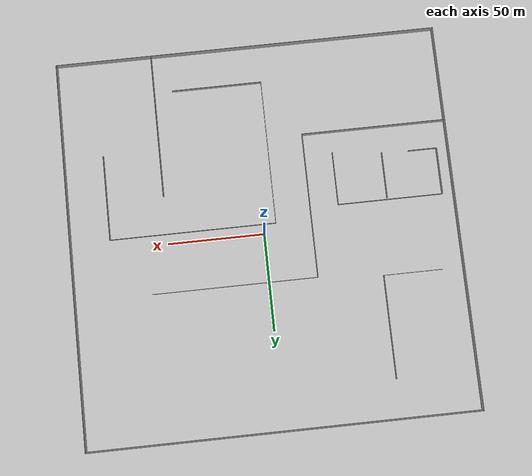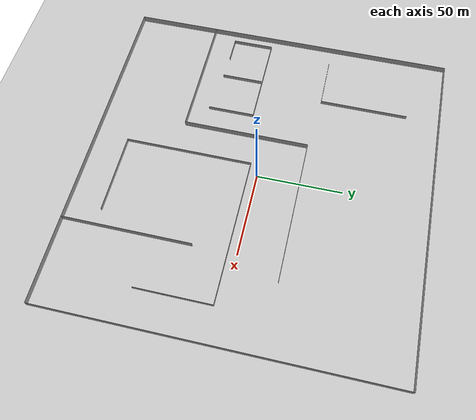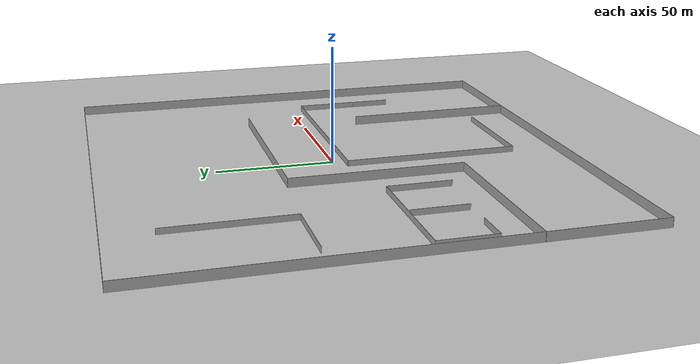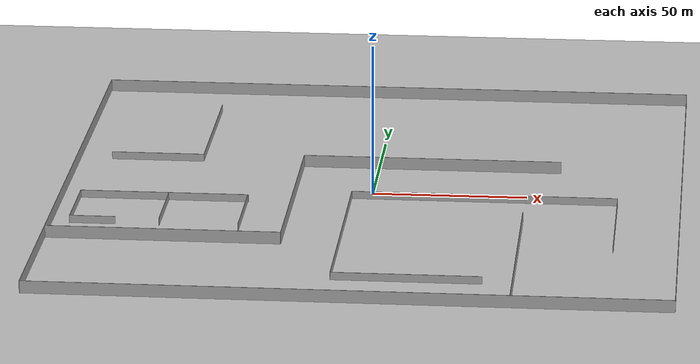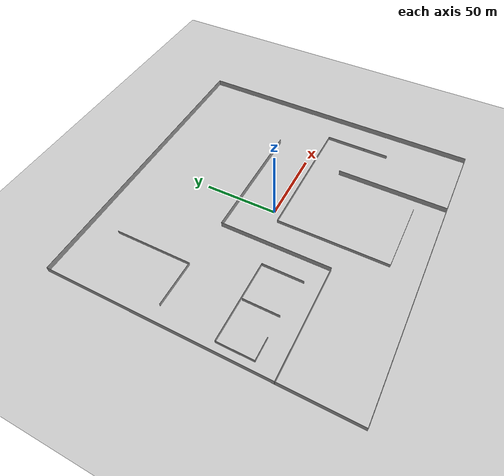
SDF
<sdf version="1.7">
 <world name="default">
  <light name="sun" type="directional">
   <pose>0 0 10 0 -0 0</pose>
   <diffuse>0.8 0.8 0.8 1</diffuse>
   <specular>0.2 0.2 0.2 1</specular>
   <attenuation>
    <range>1000</range>
    <constant>0.9</constant>
    <linear>0.01</linear>
    <quadratic>0.001</quadratic>
   </attenuation>
   <direction>-0.5 0.1 -0.9</direction>
   <spot><inner_angle>0</inner_angle><outer_angle>0</outer_angle><falloff>0</falloff></spot>
  </light>
  <model name="ground_plane">
   <static>1</static>
   <link name="link">
    <collision name="collision">
     <geometry><plane><normal>0 0 1</normal><size>100 100</size></plane></geometry>
     <surface><friction><ode><mu>100</mu><mu2>50</mu2></ode></friction></surface>
    </collision>
    <visual name="visual">
     <cast_shadows>0</cast_shadows>
     <geometry><plane><normal>0 0 1</normal><size>100 100</size></plane></geometry>
     <material>
      <script><uri>file://media/materials/scripts/gazebo.material</uri><name>Gazebo/Grey</name></script>
     </material>
    </visual>
   </link>
  </model>
  <gravity>0 0 -9.8</gravity>
  <magnetic_field>6e-06 2.3e-05 -4.2e-05</magnetic_field>
  <atmosphere type="adiabatic"/>
  <physics type="ode">
   <max_step_size>0.001</max_step_size>
   <real_time_factor>1</real_time_factor>
   <real_time_update_rate>1000</real_time_update_rate>
  </physics>
  <scene><ambient>0.4 0.4 0.4 1</ambient><background>0.7 0.7 0.7 1</background><shadows>1</shadows></scene>
  <spherical_coordinates>
   <surface_model>EARTH_WGS84</surface_model>
   <latitude_deg>0</latitude_deg>
   <longitude_deg>0</longitude_deg>
   <elevation>0</elevation>
   <heading_deg>0</heading_deg>
  </spherical_coordinates>
  <model name="wall.config">
   <link name="Wall_14">
    <collision name="Wall_14_Collision">
     <geometry><box><size>200.15 0.15 4</size></box></geometry>
     <pose>0 0 2 0 -0 0</pose>
    </collision>
    <visual name="Wall_14_Visual">
     <pose>0 0 2 0 -0 0</pose>
     <geometry><box><size>200.15 0.15 4</size></box></geometry>
     <material>
      <script><uri>file://media/materials/scripts/gazebo.material</uri><name>Gazebo/Grey</name></script>
      <ambient>1 1 1 1</ambient>
     </material>
     <meta><layer>0</layer></meta>
    </visual>
    <pose>0 100 0 0 -0 0</pose>
   </link>
   <link name="Wall_16">
    <collision name="Wall_16_Collision">
     <geometry><box><size>200.15 0.15 4</size></box></geometry>
     <pose>0 0 2 0 -0 0</pose>
    </collision>
    <visual name="Wall_16_Visual">
     <pose>0 0 2 0 -0 0</pose>
     <geometry><box><size>200.15 0.15 4</size></box></geometry>
     <material>
      <script><uri>file://media/materials/scripts/gazebo.material</uri><name>Gazebo/Grey</name></script>
      <ambient>1 1 1 1</ambient>
     </material>
     <meta><layer>0</layer></meta>
    </visual>
    <pose>100 0 0 0 -0 -1.5708</pose>
   </link>
   <link name="Wall_18">
    <collision name="Wall_18_Collision">
     <geometry><box><size>200.15 0.15 4</size></box></geometry>
     <pose>0 0 2 0 -0 0</pose>
    </collision>
    <visual name="Wall_18_Visual">
     <pose>0 0 2 0 -0 0</pose>
     <geometry><box><size>200.15 0.15 4</size></box></geometry>
     <material>
      <script><uri>file://media/materials/scripts/gazebo.material</uri><name>Gazebo/Grey</name></script>
      <ambient>1 1 1 1</ambient>
     </material>
     <meta><layer>0</layer></meta>
    </visual>
    <pose>0 -100 0 0 -0 3.14159</pose>
   </link>
   <link name="Wall_20">
    <collision name="Wall_20_Collision">
     <geometry><box><size>200.15 0.15 4</size></box></geometry>
     <pose>0 0 2 0 -0 0</pose>
    </collision>
    <visual name="Wall_20_Visual">
     <pose>0 0 2 0 -0 0</pose>
     <geometry><box><size>200.15 0.15 4</size></box></geometry>
     <material>
      <script><uri>file://media/materials/scripts/gazebo.material</uri><name>Gazebo/Grey</name></script>
      <ambient>1 1 1 1</ambient>
     </material>
     <meta><layer>0</layer></meta>
    </visual>
    <pose>-100 0 0 0 -0 1.5708</pose>
   </link>
   <link name="Wall_22">
    <collision name="Wall_22_Collision">
     <geometry><box><size>75.15 0.15 4</size></box></geometry>
     <pose>0 0 2 0 -0 0</pose>
    </collision>
    <visual name="Wall_22_Visual">
     <pose>0 0 2 0 -0 0</pose>
     <geometry><box><size>75.15 0.15 4</size></box></geometry>
     <material>
      <script><uri>file://media/materials/scripts/gazebo.material</uri><name>Gazebo/Grey</name></script>
      <ambient>1 1 1 1</ambient>
     </material>
     <meta><layer>0</layer></meta>
    </visual>
    <pose>50 -62.5 0 0 -0 1.5708</pose>
   </link>
   <link name="Wall_24">
    <collision name="Wall_24_Collision">
     <geometry><box><size>75.15 0.15 4</size></box></geometry>
     <pose>0 0 2 0 -0 0</pose>
    </collision>
    <visual name="Wall_24_Visual">
     <pose>0 0 2 0 -0 0</pose>
     <geometry><box><size>75.15 0.15 4</size></box></geometry>
     <material>
      <script><uri>file://media/materials/scripts/gazebo.material</uri><name>Gazebo/Grey</name></script>
      <ambient>1 1 1 1</ambient>
     </material>
     <meta><layer>0</layer></meta>
    </visual>
    <pose>-62.5 -50 0 0 -0 0</pose>
   </link>
   <link name="Wall_26">
    <collision name="Wall_26_Collision">
     <geometry><box><size>75.15 0.15 4</size></box></geometry>
     <pose>0 0 2 0 -0 0</pose>
    </collision>
    <visual name="Wall_26_Visual">
     <pose>0 0 2 0 -0 0</pose>
     <geometry><box><size>75.15 0.15 4</size></box></geometry>
     <material>
      <script><uri>file://media/materials/scripts/gazebo.material</uri><name>Gazebo/Grey</name></script>
      <ambient>1 1 1 1</ambient>
     </material>
     <meta><layer>0</layer></meta>
    </visual>
    <pose>-25 -12.5 0 0 -0 1.5708</pose>
   </link>
   <link name="Wall_28">
    <collision name="Wall_28_Collision">
     <geometry><box><size>85.15 0.15 4</size></box></geometry>
     <pose>0 0 2 0 -0 0</pose>
    </collision>
    <visual name="Wall_28_Visual">
     <pose>0 0 2 0 -0 0</pose>
     <geometry><box><size>85.15 0.15 4</size></box></geometry>
     <material>
      <script><uri>file://media/materials/scripts/gazebo.material</uri><name>Gazebo/Grey</name></script>
      <ambient>1 1 1 1</ambient>
     </material>
     <meta><layer>0</layer></meta>
    </visual>
    <pose>17.5 25 0 0 -0 0</pose>
   </link>
   <static>1</static>
  </model>
  <model name="wall2.config">
   <pose>-7.32318 -0.17284 0 0 -0 0</pose>
   <link name="Wall_10">
    <collision name="Wall_10_Collision">
     <geometry><box><size>54.5363 0.15 2.5</size></box></geometry>
     <pose>0 0 1.25 0 -0 0</pose>
    </collision>
    <visual name="Wall_10_Visual">
     <pose>0 0 1.25 0 -0 0</pose>
     <geometry><box><size>54.5363 0.15 2.5</size></box></geometry>
     <material>
      <script><uri>file://media/materials/scripts/gazebo.material</uri><name>Gazebo/Grey</name></script>
      <ambient>1 1 1 1</ambient>
     </material>
     <meta><layer>0</layer></meta>
    </visual>
    <pose>-59.4848 -11.2152 0 0 -0 0</pose>
   </link>
   <link name="Wall_11">
    <collision name="Wall_11_Collision">
     <geometry><box><size>27.75 0.15 2.5</size></box></geometry>
     <pose>0 0 1.25 0 -0 0</pose>
    </collision>
    <visual name="Wall_11_Visual">
     <pose>0 0 1.25 0 -0 0</pose>
     <geometry><box><size>27.75 0.15 2.5</size></box></geometry>
     <material>
      <script><uri>file://media/materials/scripts/gazebo.material</uri><name>Gazebo/Grey</name></script>
      <ambient>1 1 1 1</ambient>
     </material>
     <meta><layer>0</layer></meta>
    </visual>
    <pose>-32.4348 -25.0152 0 0 -0 -1.5708</pose>
   </link>
   <link name="Wall_13">
    <collision name="Wall_13_Collision">
     <geometry><box><size>24.25 0.15 2.5</size></box></geometry>
     <pose>0 0 1.25 0 -0 0</pose>
    </collision>
    <visual name="Wall_13_Visual">
     <pose>0 0 1.25 0 -0 0</pose>
     <geometry><box><size>24.25 0.15 2.5</size></box></geometry>
     <material>
      <script><uri>file://media/materials/scripts/gazebo.material</uri><name>Gazebo/Grey</name></script>
      <ambient>1 1 1 1</ambient>
     </material>
     <meta><layer>0</layer></meta>
    </visual>
    <pose>-58.1241 -24.0266 0 0 -0 -1.5708</pose>
   </link>
   <link name="Wall_16">
    <collision name="Wall_16_Collision">
     <geometry><box><size>24.5 0.15 2.5</size></box></geometry>
     <pose>0 0 1.25 0 -0 0</pose>
    </collision>
    <visual name="Wall_16_Visual">
     <pose>0 0 1.25 0 -0 0</pose>
     <geometry><box><size>24.5 0.15 2.5</size></box></geometry>
     <material>
      <script><uri>file://media/materials/scripts/gazebo.material</uri><name>Gazebo/Grey</name></script>
      <ambient>1 1 1 1</ambient>
     </material>
     <meta><layer>0</layer></meta>
    </visual>
    <pose>-86.9167 -23.3993 0 0 -0 -1.5708</pose>
   </link>
   <link name="Wall_17">
    <collision name="Wall_17_Collision">
     <geometry><box><size>14.75 0.15 2.5</size></box></geometry>
     <pose>0 0 1.25 0 -0 0</pose>
    </collision>
    <visual name="Wall_17_Visual">
     <pose>0 0 1.25 0 -0 0</pose>
     <geometry><box><size>14.75 0.15 2.5</size></box></geometry>
     <material>
      <script><uri>file://media/materials/scripts/gazebo.material</uri><name>Gazebo/Grey</name></script>
      <ambient>1 1 1 1</ambient>
     </material>
     <meta><layer>0</layer></meta>
    </visual>
    <pose>-79.6167 -35.5743 0 0 -0 0</pose>
   </link>
   <link name="Wall_19">
    <collision name="Wall_19_Collision">
     <geometry><box><size>75.5 0.15 2.5</size></box></geometry>
     <pose>0 0 1.25 0 -0 0</pose>
    </collision>
    <visual name="Wall_19_Visual">
     <pose>0 0 1.25 0 -0 0</pose>
     <geometry><box><size>75.5 0.15 2.5</size></box></geometry>
     <material>
      <script><uri>file://media/materials/scripts/gazebo.material</uri><name>Gazebo/Grey</name></script>
      <ambient>1 1 1 1</ambient>
     </material>
     <meta><layer>0</layer></meta>
    </visual>
    <pose>0.816742 -42.661 0 0 -0 -1.5708</pose>
   </link>
   <link name="Wall_2">
    <collision name="Wall_2_Collision">
     <geometry><box><size>86.25 0.15 2.5</size></box></geometry>
     <pose>0 0 1.25 0 -0 0</pose>
    </collision>
    <visual name="Wall_2_Visual">
     <pose>0 0 1.25 0 -0 0</pose>
     <geometry><box><size>86.25 0.15 2.5</size></box></geometry>
     <material>
      <script><uri>file://media/materials/scripts/gazebo.material</uri><name>Gazebo/Grey</name></script>
      <ambient>1 1 1 1</ambient>
     </material>
     <meta><layer>0</layer></meta>
    </visual>
    <pose>43.8667 -4.98604 0 0 -0 0</pose>
   </link>
   <link name="Wall_20">
    <collision name="Wall_20_Collision">
     <geometry><box><size>47 0.15 2.5</size></box></geometry>
     <pose>0 0 1.25 0 -0 0</pose>
    </collision>
    <visual name="Wall_20_Visual">
     <pose>0 0 1.25 0 -0 0</pose>
     <geometry><box><size>47 0.15 2.5</size></box></geometry>
     <material>
      <script><uri>file://media/materials/scripts/gazebo.material</uri><name>Gazebo/Grey</name></script>
      <ambient>1 1 1 1</ambient>
     </material>
     <meta><layer>0</layer></meta>
    </visual>
    <pose>24.2417 -80.336 0 0 -0 0</pose>
   </link>
   <link name="Wall_3">
    <collision name="Wall_3_Collision">
     <geometry><box><size>27.25 0.15 2.5</size></box></geometry>
     <pose>0 0 1.25 0 -0 0</pose>
    </collision>
    <visual name="Wall_3_Visual">
     <pose>0 0 1.25 0 -0 0</pose>
     <geometry><box><size>27.25 0.15 2.5</size></box></geometry>
     <material>
      <script><uri>file://media/materials/scripts/gazebo.material</uri><name>Gazebo/Grey</name></script>
      <ambient>1 1 1 1</ambient>
     </material>
     <meta><layer>0</layer></meta>
    </visual>
    <pose>86.9167 -18.536 0 0 -0 -1.5708</pose>
   </link>
   <link name="Wall_4">
    <collision name="Wall_4_Collision">
     <geometry><box><size>17.25 0.15 2.5</size></box></geometry>
     <pose>0 0 1.25 0 -0 0</pose>
    </collision>
    <visual name="Wall_4_Visual">
     <pose>0 0 1.25 0 -0 0</pose>
     <geometry><box><size>17.25 0.15 2.5</size></box></geometry>
     <material>
      <script><uri>file://media/materials/scripts/gazebo.material</uri><name>Gazebo/Grey</name></script>
      <ambient>1 1 1 1</ambient>
     </material>
     <meta><layer>0</layer></meta>
    </visual>
    <pose>86.9167 -40.636 0 0 -0 -1.5708</pose>
   </link>
   <link name="Wall_6">
    <collision name="Wall_6_Collision">
     <geometry><box><size>52.75 0.15 2.5</size></box></geometry>
     <pose>0 0 1.25 0 -0 0</pose>
    </collision>
    <visual name="Wall_6_Visual">
     <pose>0 0 1.25 0 -0 0</pose>
     <geometry><box><size>52.75 0.15 2.5</size></box></geometry>
     <material>
      <script><uri>file://media/materials/scripts/gazebo.material</uri><name>Gazebo/Grey</name></script>
      <ambient>1 1 1 1</ambient>
     </material>
     <meta><layer>0</layer></meta>
    </visual>
    <pose>-51.4708 54.036 0 0 -0 1.5708</pose>
   </link>
   <link name="Wall_8">
    <collision name="Wall_8_Collision">
     <geometry><box><size>30.75 0.15 2.5</size></box></geometry>
     <pose>0 0 1.25 0 -0 0</pose>
    </collision>
    <visual name="Wall_8_Visual">
     <pose>0 0 1.25 0 -0 0</pose>
     <geometry><box><size>30.75 0.15 2.5</size></box></geometry>
     <material>
      <script><uri>file://media/materials/scripts/gazebo.material</uri><name>Gazebo/Grey</name></script>
      <ambient>1 1 1 1</ambient>
     </material>
     <meta><layer>0</layer></meta>
    </visual>
    <pose>-66.7708 27.736 0 0 -0 3.14159</pose>
   </link>
   <static>1</static>
  </model>
 </world>
</sdf>
